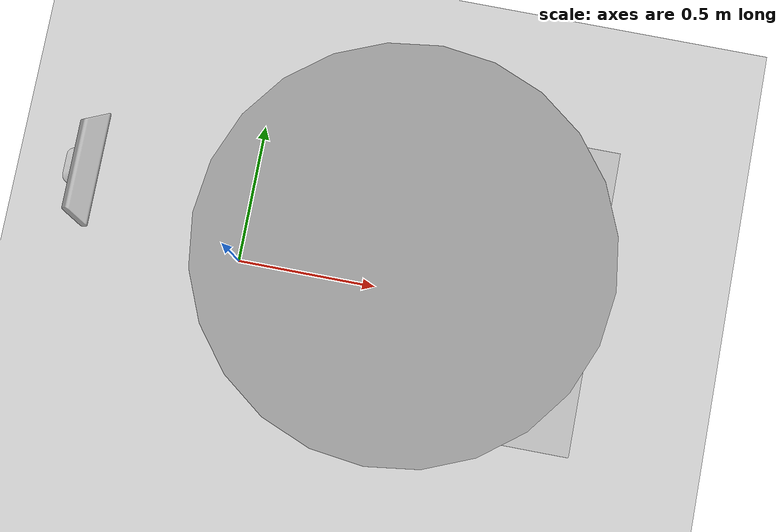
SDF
<sdf version="1.6">
 <world name="default">
  <light name="sun" type="directional">
   <pose>0 0 10 0 -0 0</pose>
   <diffuse>0.8 0.8 0.8 1</diffuse>
   <specular>0.1 0.1 0.1 1</specular>
   <attenuation>
    <range>1000</range>
    <constant>0.9</constant>
    <linear>0.01</linear>
    <quadratic>0.001</quadratic>
   </attenuation>
   <direction>-0.5 0.5 -1</direction>
  </light>
  <model name="ground_plane">
   <static>1</static>
   <link name="link">
    <collision name="collision">
     <geometry><plane><normal>0 0 1</normal><size>100 100</size></plane></geometry>
     <surface><friction><ode><mu>100</mu><mu2>50</mu2></ode></friction></surface>
    </collision>
    <visual name="visual">
     <cast_shadows>0</cast_shadows>
     <geometry><plane><normal>0 0 1</normal><size>100 100</size></plane></geometry>
     <material>
      <script><uri>file://media/materials/scripts/gazebo.material</uri><name>Gazebo/Grey</name></script>
     </material>
    </visual>
   </link>
  </model>
  <gravity>0 0 -9.8</gravity>
  <magnetic_field>6e-06 2.3e-05 -4.2e-05</magnetic_field>
  <atmosphere type="adiabatic"/>
  <physics name="default_physics" default="0" type="ode">
   <max_step_size>0.001</max_step_size>
   <real_time_factor>1</real_time_factor>
   <real_time_update_rate>1000</real_time_update_rate>
  </physics>
  <scene><ambient>0.4 0.4 0.4 1</ambient><background>0.7 0.7 0.7 1</background><shadows>1</shadows></scene>
  <spherical_coordinates>
   <surface_model>EARTH_WGS84</surface_model>
   <latitude_deg>0</latitude_deg>
   <longitude_deg>0</longitude_deg>
   <elevation>0</elevation>
   <heading_deg>0</heading_deg>
  </spherical_coordinates>
  <model name="cafe_table">
   <static>1</static>
   <link name="link">
    <collision name="surface">
     <pose>0 0 0.755 0 -0 0</pose>
     <geometry><box><size>0.913 0.913 0.04</size></box></geometry>
    </collision>
    <collision name="column">
     <pose>0 0 0.37 0 -0 0</pose>
     <geometry><box><size>0.042 0.042 0.74</size></box></geometry>
    </collision>
    <collision name="base">
     <pose>0 0 0.02 0 -0 0</pose>
     <geometry><box><size>0.56 0.56 0.04</size></box></geometry>
    </collision>
    <visual name="visual">
     <geometry><mesh><uri>model://cafe_table/meshes/cafe_table.dae</uri><scale>1 1 1</scale></mesh></geometry>
    </visual>
   </link>
   <pose>0.698427 0 0 0 -0 0</pose>
  </model>
  <model name="unit_cylinder_0">
   <pose>0.57036 -0.04885 1.02333 -0.000125 8.3e-05 -0.000139</pose>
   <link name="link">
    <inertial>
     <mass>1</mass>
     <inertia><ixx>0.145833</ixx><ixy>0</ixy><ixz>0</ixz><iyy>0.145833</iyy><iyz>0</iyz><izz>0.125</izz></inertia>
    </inertial>
    <collision name="collision">
     <geometry><cylinder><radius>0.500001</radius><length>1</length></cylinder></geometry>
    </collision>
    <visual name="visual">
     <geometry><cylinder><radius>0.500001</radius><length>1</length></cylinder></geometry>
     <material>
      <script><name>Gazebo/Grey</name><uri>file://media/materials/scripts/gazebo.material</uri></script>
     </material>
    </visual>
   </link>
  </model>
  <model name="kinect_static-2">
   <link name="link">
    <pose>0.40523 0 1.43936 0 0.607495 0</pose>
    <inertial>
     <mass>0.1</mass>
     <inertia><ixx>1</ixx><ixy>0</ixy><ixz>0</ixz><iyy>1</iyy><iyz>0</iyz><izz>1</izz></inertia>
    </inertial>
    <sensor name="camera" type="depth">
     <update_rate>20</update_rate>
     <camera name="__default__">
      <horizontal_fov>1.0472</horizontal_fov>
      <image><width>640</width><height>480</height><format>R8G8B8</format></image>
      <clip><near>0.05</near><far>3</far></clip>
     </camera>
     <plugin name="camera_plugin" filename="libgazebo_ros_openni_kinect.so">
      <baseline>0.2</baseline>
      <alwaysOn>true</alwaysOn>
      <updateRate>0.0</updateRate>
      <cameraName>camera_ir</cameraName>
      <imageTopicName>/camera/depth/image_raw</imageTopicName>
      <cameraInfoTopicName>/camera/depth/camera_info</cameraInfoTopicName>
      <depthImageTopicName>/camera/depth/image_raw</depthImageTopicName>
      <depthImageInfoTopicName>/camera/depth/camera_info</depthImageInfoTopicName>
      <pointCloudTopicName>/camera/depth/points</pointCloudTopicName>
      <frameName>camera_link</frameName>
      <pointCloudCutoff>0.05</pointCloudCutoff>
      <distortionK1>0</distortionK1>
      <distortionK2>0</distortionK2>
      <distortionK3>0</distortionK3>
      <distortionT1>0</distortionT1>
      <distortionT2>0</distortionT2>
      <CxPrime>0</CxPrime>
      <Cx>0</Cx>
      <Cy>0</Cy>
      <focalLength>0</focalLength>
      <hackBaseline>0</hackBaseline>
     </plugin>
    </sensor>
    <visual name="visual">
     <geometry><mesh><uri>model://kinect/meshes/kinect.dae</uri><scale>1 1 1</scale></mesh></geometry>
    </visual>
    <collision name="collision">
     <geometry><box><size>0.073 0.276 0.072</size></box></geometry>
     <surface>
      <friction>
       <ode><mu>1</mu><mu2>1</mu2><fdir1>0 0 0</fdir1><slip1>0</slip1><slip2>0</slip2></ode>
       <torsional>
        <coefficient>1</coefficient>
        <patch_radius>0</patch_radius>
        <surface_radius>0</surface_radius>
        <use_patch_radius>1</use_patch_radius>
        <ode><slip>0</slip></ode>
       </torsional>
      </friction>
      <bounce><restitution_coefficient>0</restitution_coefficient><threshold>1e+06</threshold></bounce>
      <contact>
       <collide_without_contact>0</collide_without_contact>
       <collide_without_contact_bitmask>1</collide_without_contact_bitmask>
       <collide_bitmask>1</collide_bitmask>
       <ode>
        <soft_cfm>0</soft_cfm>
        <soft_erp>0.2</soft_erp>
        <kp>1e+13</kp>
        <kd>1</kd>
        <max_vel>0.01</max_vel>
        <min_depth>0</min_depth>
       </ode>
       <bullet>
        <split_impulse>1</split_impulse>
        <split_impulse_penetration_threshold>-0.01</split_impulse_penetration_threshold>
        <soft_cfm>0</soft_cfm>
        <soft_erp>0.2</soft_erp>
        <kp>1e+13</kp>
        <kd>1</kd>
       </bullet>
      </contact>
     </surface>
    </collision>
   </link>
   <static>1</static>
   <pose>-0.585725 0.014381 0.036 1e-06 -1e-06 0</pose>
  </model>
 </world>
</sdf>
